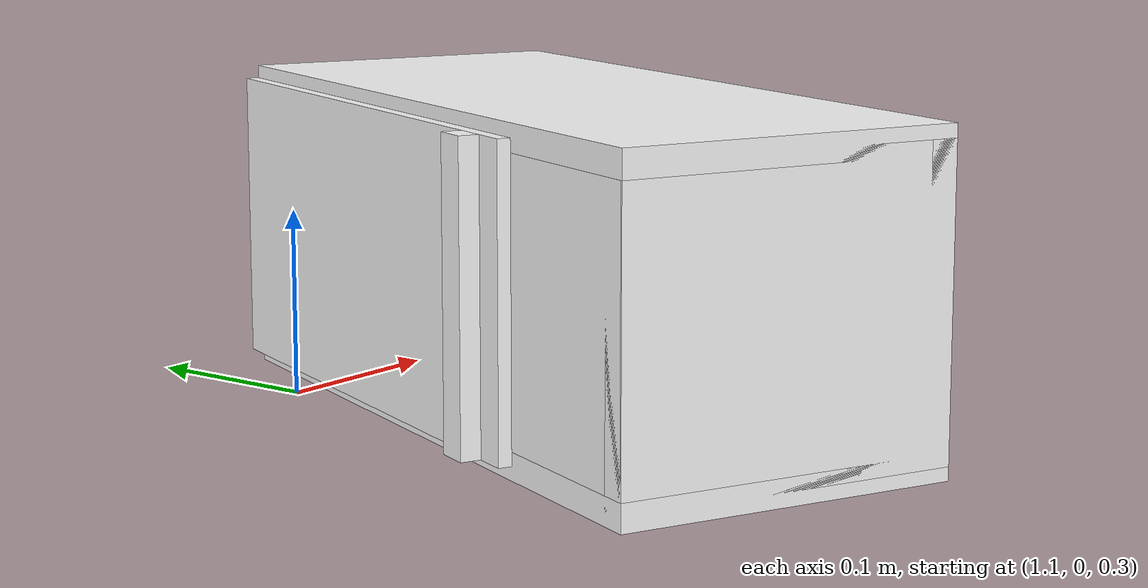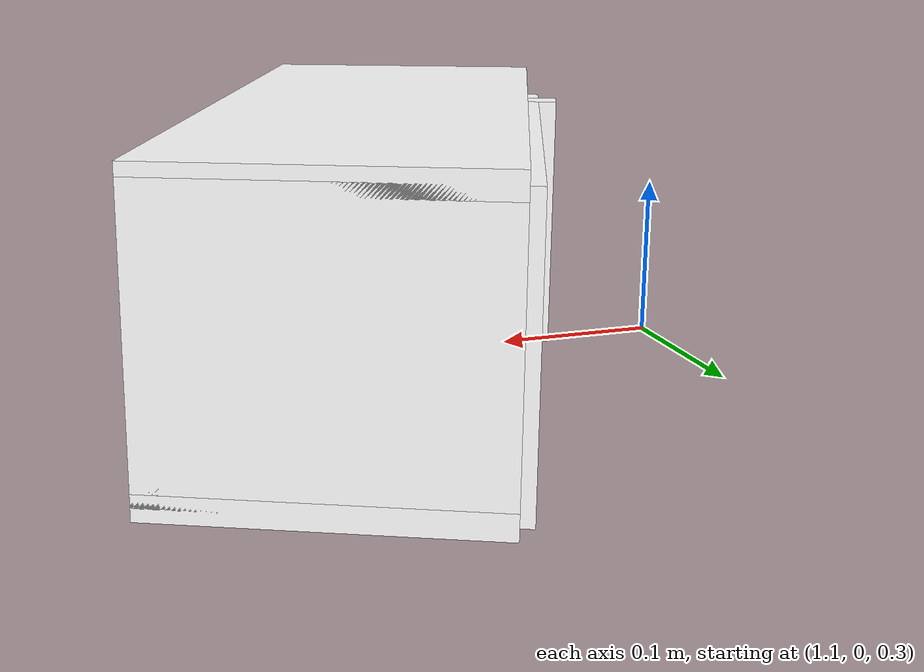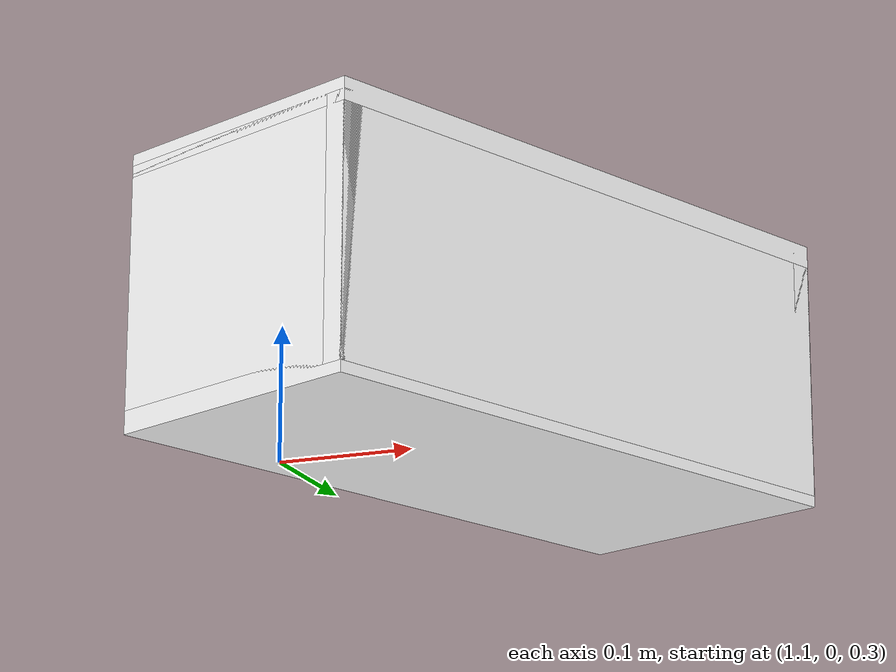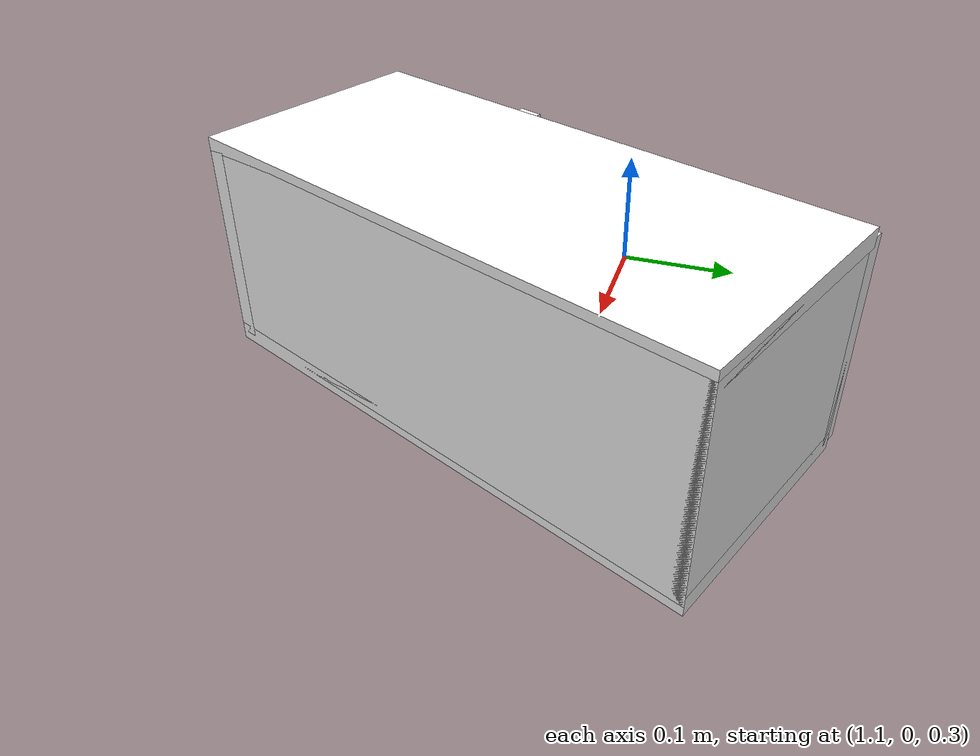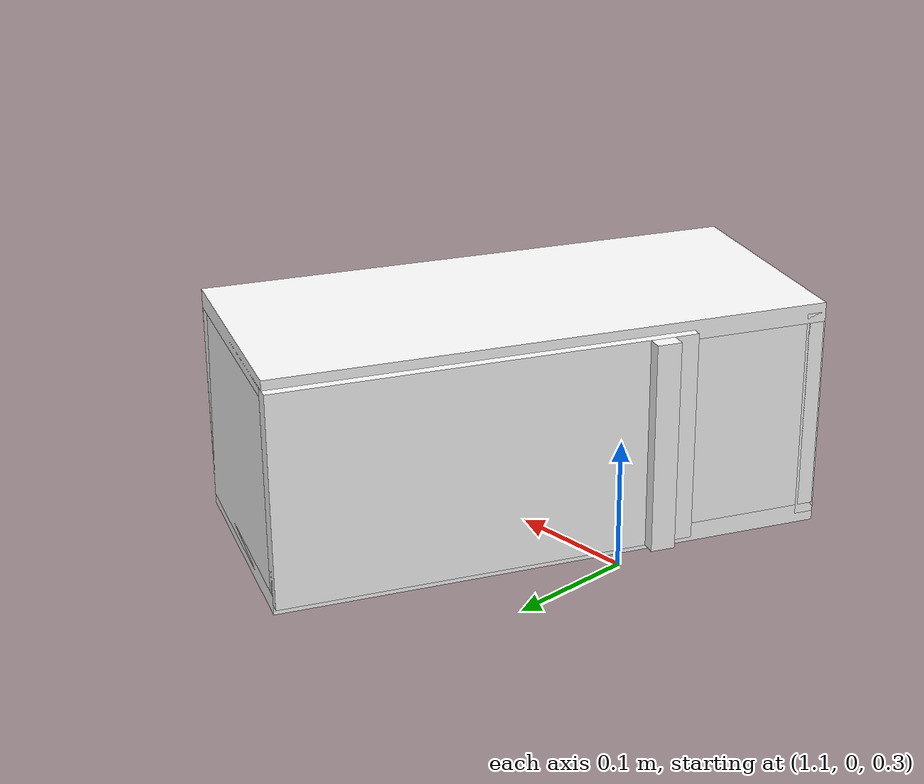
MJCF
<mujoco model="cabinet">
    <compiler angle="radian" eulerseq='zxy' />
    <option gravity = "0 0 0" />
    <option>
        <flag contact = "disable"/>
    </option>
    <statistic	extent="1.0" center="0.0 0.0 0.0"/>
    <visual>
        <map fogstart="3" fogend="5" force="0.1" znear=" 0.100000 " zfar=" 12.000000 "/>
    </visual>
    <size njmax="500" nconmax="100" />
    <actuator>
        <velocity joint="bottom_left_hinge" name="viva_revolution" kv='10'></velocity>
    </actuator>
    <asset>
        <texture builtin="flat" name="tabletex" height="32" width="32" rgb1="1 1 1" type="cube"></texture>
        <texture builtin="flat" name="objtex" height="32" width="32" rgb1="1 1 1" type="cube"></texture>
        <texture builtin="flat" name="handletex" height="32" width="32" rgb1="1 1 1" type="cube"></texture>
        <texture builtin="flat" name="wallpaper" height="32" width="32" rgb1="1 0 0" type="cube"></texture>
        <texture builtin="flat" name="kp" height="32" width="32" rgb1="1 1 1" type="cube"></texture>
        <material name="geomTable" shininess="0.03" specular="0.75" texture="tabletex"></material>
        <material name="geomObj" shininess="0.03" specular="0.75" texture="objtex"></material>
        <material name="geomHandle" shininess="0.03" specular="0.75" texture="handletex"></material>
        <material name="ax" shininess="0.03" specular="0.75" texture="wallpaper"></material>
        <material name="bg" shininess="0.03" specular="0.75" texture="wallpaper"></material>
        <material name="geomKeypad" shininess="0.03" specular="0.75" texture="kp"></material>
    </asset>
    <worldbody>
        <body name="cabinet_bottom" pos= " 1.273585 -0.054986 0.270151 "  quat= " 0.201633 0.000000 0.000000 0.979461" >
            <inertial pos="0 0 0" mass="1" diaginertia="1 1 1" />
            <geom size= " 0.100235 0.226324 0.007868 "  type="box" material="geomObj" name="b"/>
            <body name="cabinet_left" pos= " 0.000000 -0.218456 0.087253 " >
                <inertial pos="0 0 0" mass="1" diaginertia="1 1 1" />
                <geom size= " 0.100235 0.007868 0.087253 "  type="box" material="geomObj" name="c" />
            </body>
            <body name="cabinet_right" pos= " 0.000000 0.218456 0.087253 " >
                <inertial pos="0 0 0" mass="1" diaginertia="1 1 1" />
                <geom size= " 0.100235 0.007868 0.087253 "  type="box" material="geomObj" name="d" />
            </body>
            <body name="cabinet_top" pos= " 0.000000 0.000000 0.174505 " >
                <inertial pos="0 0 0" mass="1" diaginertia="1 1 1" />
                <geom size= " 0.100235 0.226324 0.007868 "  type="box" material="geomObj" name="e"/>
            </body>
            <body name="cabinet_back" pos= " -0.092367 0.000000 0.087253 "  >
                <inertial pos="0 0 0" mass="1" diaginertia="1 1 1" />
                <geom size= " 0.007868 0.226324 0.087253 "  type="box" material="geomObj" name="f" />
            </body>
            <body name="cabinet_keypad" pos= " 0.007868 0.168743 0.087253 " >
                <inertial pos="0 0 0" mass="1" diaginertia="1 1 1" />
                <geom size= " 0.092367 0.056581 0.079384 "  type="box" material="geomKeypad" name="keypizzlemynizzle" />
            </body>
            <body name="cabinet_left_hinge" pos= " 0.100235 -0.226324 0.087253 " >
                <inertial pos= " 0.000000 0.169743 0.000000 "  mass="1" diaginertia="1 1 1" />
                <joint name="bottom_left_hinge" type="hinge" pos="0 0 0" axis="0 0 1" limited="true" range= "-2.3 0"  />
                <geom size= " 0.007868 0.169743 0.087253 "  pos= " 0.000000 0.169743 0.000000 "  type="box" material="geomObj" name="g"/>
                <body name="handle_link" pos= " 0.010000 0.309486 0.000000 " >
                    <inertial pos="0 0 0" mass="1" diaginertia="1 1 1" />
                    <geom size= " 0.010000 0.010000 0.087253 "  type="box" material="geomHandle" name="h"/>
                </body>
            </body>
        </body>
        <body name="external_camera_body_0" pos="0.0 0 0.00" >
            <camera euler="-1.57 1.57 0.0" fovy=" 54.280851 " name="external_camera_0" pos="0.0 0 0"></camera>
            <inertial pos= " 0.00 0.0 0.000000 " mass="1" diaginertia="1 1 1" />
            <joint name="cam_j" pos="0.0 0 0" axis = "1 0 0" type="free" />
        </body>
    </worldbody>
</mujoco>
